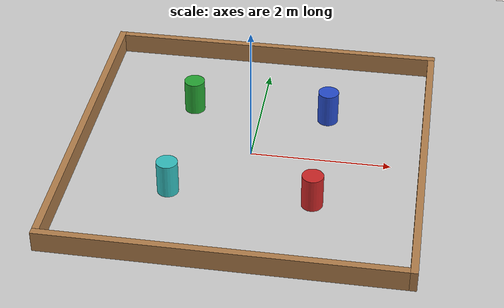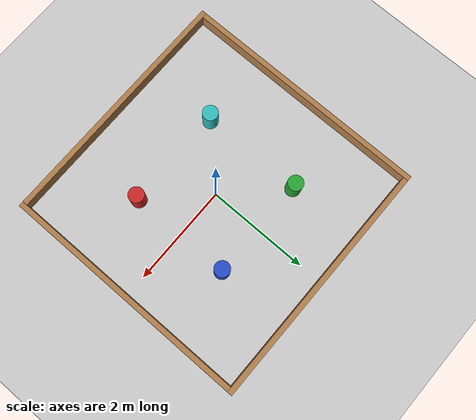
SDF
<?xml version="1.0"?>
<sdf version="1.6">
  <world name="default">

    <include>
      <uri>model://ground_plane</uri>
    </include>

    <include>
      <uri>model://sun</uri>
    </include>

    <scene>
      <shadows>false</shadows>
    </scene>

    <gui fullscreen='0'>
      <camera name='user_camera'>
        <pose frame=''>0.319654 -0.235002 9.29441 0 1.5138 0.009599</pose>
        <view_controller>orbit</view_controller>
        <projection_type>perspective</projection_type>
      </camera>
    </gui>

    <physics type="ode">
      <real_time_update_rate>1000.0</real_time_update_rate>
      <max_step_size>0.001</max_step_size>
      <real_time_factor>1</real_time_factor>
      <ode>
        <solver>
          <type>quick</type>
          <iters>150</iters>
          <precon_iters>0</precon_iters>
          <sor>1.400000</sor>
          <use_dynamic_moi_rescaling>1</use_dynamic_moi_rescaling>
        </solver>
        <constraints>
          <cfm>0.00001</cfm>
          <erp>0.2</erp>
          <contact_max_correcting_vel>2000.000000</contact_max_correcting_vel>
          <contact_surface_layer>0.01000</contact_surface_layer>
        </constraints>
      </ode>
    </physics>

    <include>
      <uri>model://wooden_walls</uri>
    </include>

    <include>
      <uri>model://colloured_pillars</uri>
    </include>

  </world>
</sdf>

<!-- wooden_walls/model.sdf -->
<sdf version='1.6'>
  <model name='wooden_walls'>
    <pose frame=''>0 0 0.15 0 0 0</pose>
    <link name='Right_Wall'>
      <collision name='Right_Wall_Collision'>
        <geometry>
          <box>
            <size>4.90 0.10 0.3</size>
          </box>
        </geometry>
        <pose frame=''>0 0 0 0 0 0</pose>
      </collision>
      <visual name='Right_Wall_Visual'>
        <pose frame=''>0 0 0 0 0 0</pose>
        <geometry>
          <box>
            <size>4.90 0.10 0.3</size>
          </box>
        </geometry>
        <material>
          <script>
            <uri>file://media/materials/scripts/gazebo.material</uri>
            <name>Gazebo/Wood</name>
          </script>
          <ambient>1 1 1 1</ambient>
        </material>
      </visual>
      <pose frame=''>0.05 2.45 0 0 0 0</pose>
    </link>
    <link name='Back_Wall'>
      <collision name='Back_Wall_Collision'>
        <geometry>
          <box>
            <size>4.90 0.10 0.3</size>
          </box>
        </geometry>
        <pose frame=''>0 0 0 0 0 0</pose>
      </collision>
      <visual name='Back_Wall_Visual'>
        <pose frame=''>0 0 0 0 0 0</pose>
        <geometry>
          <box>
            <size>4.90 0.10 0.3</size>
          </box>
        </geometry>
        <material>
          <script>
            <uri>file://media/materials/scripts/gazebo.material</uri>
            <name>Gazebo/Wood</name>
          </script>
          <ambient>1 1 1 1</ambient>
        </material>
      </visual>
      <pose frame=''>-2.45 0.05 0 0 0 1.5708</pose>
    </link>
    <link name='Left_Wall'>
      <collision name='Left_Wall_Collision'>
        <geometry>
          <box>
            <size>4.90 0.10 0.3</size>
          </box>
        </geometry>
        <pose frame=''>0 0 0 0 0 0</pose>
      </collision>
      <visual name='Left_Wall_Visual'>
        <pose frame=''>0 0 0 0 0 0</pose>
        <geometry>
          <box>
            <size>4.90 0.10 0.3</size>
          </box>
        </geometry>
        <material>
          <script>
            <uri>file://media/materials/scripts/gazebo.material</uri>
            <name>Gazebo/Wood</name>
          </script>
          <ambient>1 1 1 1</ambient>
        </material>
      </visual>
      <pose frame=''>-0.05 -2.45 0 0 0 0</pose>
    </link>
    <link name='Front_Wall'>
      <collision name='Front_Wall_Collision'>
        <geometry>
          <box>
            <size>4.90 0.10 0.3</size>
          </box>
        </geometry>
        <pose frame=''>0 0 0 0 0 0</pose>
      </collision>
      <visual name='Front_Wall_Visual'>
        <pose frame=''>0 0 0 0 0 0</pose>
        <geometry>
          <box>
            <size>4.90 0.10 0.3</size>
          </box>
        </geometry>
        <material>
          <script>
            <uri>file://media/materials/scripts/gazebo.material</uri>
            <name>Gazebo/Wood</name>
          </script>
          <ambient>1 1 1 1</ambient>
        </material>
      </visual>
      <pose frame=''>2.45 -0.05 0 0 0 1.5708</pose>
    </link>
    <static>1</static>
  </model>
</sdf>

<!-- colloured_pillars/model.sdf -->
<sdf version='1.6'>
  <model name='colloured_pillars'>
    <pose frame=''>0 0 0.25 0 0 0</pose>
    <link name='pillar_turq'>
      <pose frame=''>-1 -1 0 0 0 0</pose>
      <collision name='pillar_turq_coll'>
        <pose>0 0 0 0 0 0</pose>
        <geometry>
          <cylinder>
            <radius>0.15</radius>
            <length>0.5</length>
          </cylinder>
        </geometry>
        <max_contacts>10</max_contacts>
        <surface>
          <bounce/>
          <friction>
            <ode/>
          </friction>
          <contact>
            <ode/>
          </contact>
        </surface>
      </collision>
      <visual name='pillar_turq_vis'>
        <pose>0 0 0 0 0 0</pose>
        <geometry>
          <cylinder>
            <radius>0.15</radius>
            <length>0.5</length>
          </cylinder>
        </geometry>
        <material>
          <script>
            <uri>file://media/materials/scripts/gazebo.material</uri>
            <name>Gazebo/Turquoise</name>
          </script>
        </material>
      </visual>
    </link>
    <link name='pillar_green'>
      <pose frame=''>-1 1 0 0 0 0</pose>
      <collision name='pillar_green_coll'>
        <pose>0 0 0 0 0 0</pose>
        <geometry>
          <cylinder>
            <radius>0.15</radius>
            <length>0.5</length>
          </cylinder>
        </geometry>
        <max_contacts>10</max_contacts>
        <surface>
          <bounce/>
          <friction>
            <ode/>
          </friction>
          <contact>
            <ode/>
          </contact>
        </surface>
      </collision>
      <visual name='pillar_green_vis'>
        <pose>0 0 0 0 0 0</pose>
        <geometry>
          <cylinder>
            <radius>0.15</radius>
            <length>0.5</length>
          </cylinder>
        </geometry>
        <material>
          <script>
            <uri>file://media/materials/scripts/gazebo.material</uri>
            <name>Gazebo/Green</name>
          </script>
        </material>
      </visual>
    </link>
    <link name='pillar_blue'>
      <pose frame=''>1 1 0 0 0 0</pose>
      <collision name='pillar_green_coll'>
        <pose>0 0 0 0 0 0</pose>
        <geometry>
          <cylinder>
            <radius>0.15</radius>
            <length>0.5</length>
          </cylinder>
        </geometry>
        <max_contacts>10</max_contacts>
        <surface>
          <bounce/>
          <friction>
            <ode/>
          </friction>
          <contact>
            <ode/>
          </contact>
        </surface>
      </collision>
      <visual name='pillar_green_vis'>
        <pose>0 0 0 0 0 0</pose>
        <geometry>
          <cylinder>
            <radius>0.15</radius>
            <length>0.5</length>
          </cylinder>
        </geometry>
        <material>
          <script>
            <uri>file://media/materials/scripts/gazebo.material</uri>
            <name>Gazebo/Blue</name>
          </script>
        </material>
      </visual>
    </link>
    <link name='pillar_red'>
      <pose frame=''>1 -1 0 0 0 0</pose>
      <collision name='pillar_green_coll'>
        <pose>0 0 0 0 0 0</pose>
        <geometry>
          <cylinder>
            <radius>0.15</radius>
            <length>0.5</length>
          </cylinder>
        </geometry>
        <max_contacts>10</max_contacts>
        <surface>
          <bounce/>
          <friction>
            <ode/>
          </friction>
          <contact>
            <ode/>
          </contact>
        </surface>
      </collision>
      <visual name='pillar_green_vis'>
        <pose>0 0 0 0 0 0</pose>
        <geometry>
          <cylinder>
            <radius>0.15</radius>
            <length>0.5</length>
          </cylinder>
        </geometry>
        <material>
          <script>
            <uri>file://media/materials/scripts/gazebo.material</uri>
            <name>Gazebo/Red</name>
          </script>
        </material>
      </visual>
    </link>
    <static>1</static>
  </model>
</sdf>
